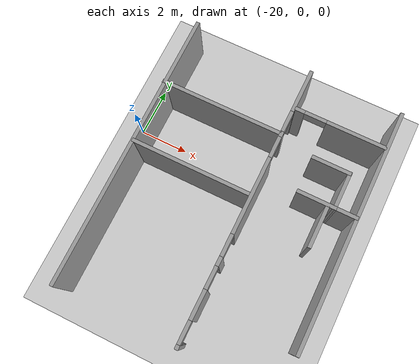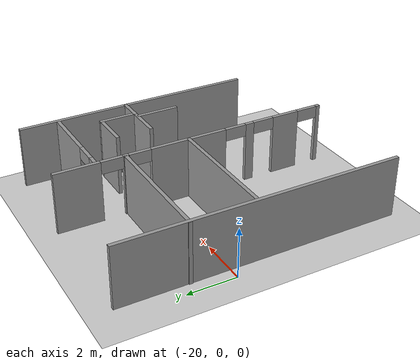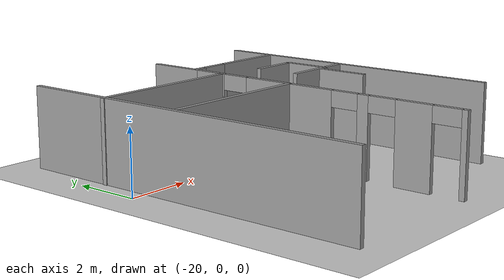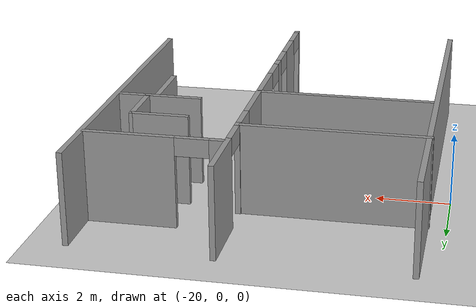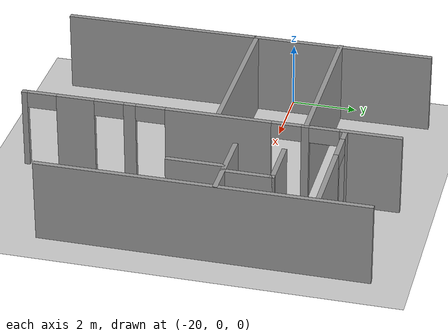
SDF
<sdf version="1.7">
 <world name="default">
  <model name="ground_plane">
   <static>1</static>
   <link name="link">
    <collision name="collision">
     <geometry><plane><normal>0 0 1</normal><size>100 100</size></plane></geometry>
     <surface><friction><ode><mu>100</mu><mu2>50</mu2></ode></friction></surface>
    </collision>
    <visual name="visual">
     <cast_shadows>0</cast_shadows>
     <geometry><plane><normal>0 0 1</normal><size>100 100</size></plane></geometry>
     <material>
      <script><uri>file://media/materials/scripts/gazebo.material</uri><name>Gazebo/Grey</name></script>
     </material>
    </visual>
   </link>
  </model>
  <model name="batimentH">
   <link name="Wall_1">
    <pose>-13.8701 1.00339 0 0 0 -1.56945</pose>
    <visual name="Wall_1_Visual">
     <pose>0 0 1.25 0 -0 0</pose>
     <geometry><box><size>11.5003 0.15 2.5</size></box></geometry>
     <material>
      <script><uri>file://media/materials/scripts/gazebo.material</uri><name>Gazebo/Grey</name></script>
      <ambient>1 1 1 1</ambient>
      <shader type="pixel"/>
     </material>
     <meta><layer>0</layer></meta>
    </visual>
    <collision name="Wall_1_Collision">
     <pose>0 0 1.25 0 -0 0</pose>
     <geometry><box><size>11.5003 0.15 2.5</size></box></geometry>
     <surface>
      <friction>
       <ode><mu>1</mu><mu2>1</mu2><fdir1>0 0 0</fdir1><slip1>0</slip1><slip2>0</slip2></ode>
       <torsional>
        <coefficient>1</coefficient>
        <patch_radius>0</patch_radius>
        <surface_radius>0</surface_radius>
        <use_patch_radius>1</use_patch_radius>
        <ode><slip>0</slip></ode>
       </torsional>
      </friction>
      <bounce><restitution_coefficient>0</restitution_coefficient><threshold>1e+06</threshold></bounce>
      <contact>
       <collide_without_contact>0</collide_without_contact>
       <collide_without_contact_bitmask>1</collide_without_contact_bitmask>
       <collide_bitmask>1</collide_bitmask>
       <ode>
        <soft_cfm>0</soft_cfm>
        <soft_erp>0.2</soft_erp>
        <kp>1e+13</kp>
        <kd>1</kd>
        <max_vel>0.01</max_vel>
        <min_depth>0</min_depth>
       </ode>
       <bullet>
        <split_impulse>1</split_impulse>
        <split_impulse_penetration_threshold>-0.01</split_impulse_penetration_threshold>
        <soft_cfm>0</soft_cfm>
        <soft_erp>0.2</soft_erp>
        <kp>1e+13</kp>
        <kd>1</kd>
       </bullet>
      </contact>
     </surface>
    </collision>
   </link>
   <link name="Wall_10">
    <pose>-11.4774 3.90885 0 0 -0 0</pose>
    <visual name="Wall_10_Visual">
     <pose>0 0 1.25 0 -0 0</pose>
     <geometry><box><size>5 0.15 2.5</size></box></geometry>
     <material>
      <script><uri>file://media/materials/scripts/gazebo.material</uri><name>Gazebo/Grey</name></script>
      <ambient>1 1 1 1</ambient>
      <shader type="pixel"/>
     </material>
     <meta><layer>0</layer></meta>
    </visual>
    <collision name="Wall_10_Collision">
     <pose>0 0 1.25 0 -0 0</pose>
     <geometry><box><size>5 0.15 2.5</size></box></geometry>
     <surface>
      <friction>
       <ode><mu>1</mu><mu2>1</mu2><fdir1>0 0 0</fdir1><slip1>0</slip1><slip2>0</slip2></ode>
       <torsional>
        <coefficient>1</coefficient>
        <patch_radius>0</patch_radius>
        <surface_radius>0</surface_radius>
        <use_patch_radius>1</use_patch_radius>
        <ode><slip>0</slip></ode>
       </torsional>
      </friction>
      <bounce><restitution_coefficient>0</restitution_coefficient><threshold>1e+06</threshold></bounce>
      <contact>
       <collide_without_contact>0</collide_without_contact>
       <collide_without_contact_bitmask>1</collide_without_contact_bitmask>
       <collide_bitmask>1</collide_bitmask>
       <ode>
        <soft_cfm>0</soft_cfm>
        <soft_erp>0.2</soft_erp>
        <kp>1e+13</kp>
        <kd>1</kd>
        <max_vel>0.01</max_vel>
        <min_depth>0</min_depth>
       </ode>
       <bullet>
        <split_impulse>1</split_impulse>
        <split_impulse_penetration_threshold>-0.01</split_impulse_penetration_threshold>
        <soft_cfm>0</soft_cfm>
        <soft_erp>0.2</soft_erp>
        <kp>1e+13</kp>
        <kd>1</kd>
       </bullet>
      </contact>
     </surface>
    </collision>
   </link>
   <link name="Wall_12">
    <pose>-7.02318 5.08516 0 0 -0 0</pose>
    <visual name="Wall_12_Visual_0">
     <pose>-1.67123 0 1.25 0 -0 0</pose>
     <geometry><box><size>0.40754 0.15 2.5</size></box></geometry>
     <material>
      <script><uri>file://media/materials/scripts/gazebo.material</uri><name>Gazebo/Grey</name></script>
      <ambient>1 1 1 1</ambient>
      <shader type="pixel"/>
     </material>
     <meta><layer>0</layer></meta>
    </visual>
    <visual name="Wall_12_Visual_1">
     <pose>0.65377 0 1.25 0 -0 0</pose>
     <geometry><box><size>2.44246 0.15 2.5</size></box></geometry>
     <material>
      <script><uri>file://media/materials/scripts/gazebo.material</uri><name>Gazebo/Grey</name></script>
      <ambient>1 1 1 1</ambient>
      <shader type="pixel"/>
     </material>
     <meta><layer>0</layer></meta>
    </visual>
    <visual name="Wall_12_Visual_2">
     <pose>-1.01746 0 2.25 0 -0 0</pose>
     <geometry><box><size>0.9 0.15 0.5</size></box></geometry>
     <material>
      <script><uri>file://media/materials/scripts/gazebo.material</uri><name>Gazebo/Grey</name></script>
      <ambient>1 1 1 1</ambient>
      <shader type="pixel"/>
     </material>
     <meta><layer>0</layer></meta>
    </visual>
    <collision name="Wall_12_Collision_0">
     <pose>-1.67123 0 1.25 0 -0 0</pose>
     <geometry><box><size>0.40754 0.15 2.5</size></box></geometry>
     <surface>
      <friction>
       <ode><mu>1</mu><mu2>1</mu2><fdir1>0 0 0</fdir1><slip1>0</slip1><slip2>0</slip2></ode>
       <torsional>
        <coefficient>1</coefficient>
        <patch_radius>0</patch_radius>
        <surface_radius>0</surface_radius>
        <use_patch_radius>1</use_patch_radius>
        <ode><slip>0</slip></ode>
       </torsional>
      </friction>
      <bounce><restitution_coefficient>0</restitution_coefficient><threshold>1e+06</threshold></bounce>
      <contact>
       <collide_without_contact>0</collide_without_contact>
       <collide_without_contact_bitmask>1</collide_without_contact_bitmask>
       <collide_bitmask>1</collide_bitmask>
       <ode>
        <soft_cfm>0</soft_cfm>
        <soft_erp>0.2</soft_erp>
        <kp>1e+13</kp>
        <kd>1</kd>
        <max_vel>0.01</max_vel>
        <min_depth>0</min_depth>
       </ode>
       <bullet>
        <split_impulse>1</split_impulse>
        <split_impulse_penetration_threshold>-0.01</split_impulse_penetration_threshold>
        <soft_cfm>0</soft_cfm>
        <soft_erp>0.2</soft_erp>
        <kp>1e+13</kp>
        <kd>1</kd>
       </bullet>
      </contact>
     </surface>
    </collision>
    <collision name="Wall_12_Collision_1">
     <pose>0.65377 0 1.25 0 -0 0</pose>
     <geometry><box><size>2.44246 0.15 2.5</size></box></geometry>
     <surface>
      <friction>
       <ode><mu>1</mu><mu2>1</mu2><fdir1>0 0 0</fdir1><slip1>0</slip1><slip2>0</slip2></ode>
       <torsional>
        <coefficient>1</coefficient>
        <patch_radius>0</patch_radius>
        <surface_radius>0</surface_radius>
        <use_patch_radius>1</use_patch_radius>
        <ode><slip>0</slip></ode>
       </torsional>
      </friction>
      <bounce><restitution_coefficient>0</restitution_coefficient><threshold>1e+06</threshold></bounce>
      <contact>
       <collide_without_contact>0</collide_without_contact>
       <collide_without_contact_bitmask>1</collide_without_contact_bitmask>
       <collide_bitmask>1</collide_bitmask>
       <ode>
        <soft_cfm>0</soft_cfm>
        <soft_erp>0.2</soft_erp>
        <kp>1e+13</kp>
        <kd>1</kd>
        <max_vel>0.01</max_vel>
        <min_depth>0</min_depth>
       </ode>
       <bullet>
        <split_impulse>1</split_impulse>
        <split_impulse_penetration_threshold>-0.01</split_impulse_penetration_threshold>
        <soft_cfm>0</soft_cfm>
        <soft_erp>0.2</soft_erp>
        <kp>1e+13</kp>
        <kd>1</kd>
       </bullet>
      </contact>
     </surface>
    </collision>
    <collision name="Wall_12_Collision_2">
     <pose>-1.01746 0 2.25 0 -0 0</pose>
     <geometry><box><size>0.9 0.15 0.5</size></box></geometry>
     <surface>
      <friction>
       <ode><mu>1</mu><mu2>1</mu2><fdir1>0 0 0</fdir1><slip1>0</slip1><slip2>0</slip2></ode>
       <torsional>
        <coefficient>1</coefficient>
        <patch_radius>0</patch_radius>
        <surface_radius>0</surface_radius>
        <use_patch_radius>1</use_patch_radius>
        <ode><slip>0</slip></ode>
       </torsional>
      </friction>
      <bounce><restitution_coefficient>0</restitution_coefficient><threshold>1e+06</threshold></bounce>
      <contact>
       <collide_without_contact>0</collide_without_contact>
       <collide_without_contact_bitmask>1</collide_without_contact_bitmask>
       <collide_bitmask>1</collide_bitmask>
       <ode>
        <soft_cfm>0</soft_cfm>
        <soft_erp>0.2</soft_erp>
        <kp>1e+13</kp>
        <kd>1</kd>
        <max_vel>0.01</max_vel>
        <min_depth>0</min_depth>
       </ode>
       <bullet>
        <split_impulse>1</split_impulse>
        <split_impulse_penetration_threshold>-0.01</split_impulse_penetration_threshold>
        <soft_cfm>0</soft_cfm>
        <soft_erp>0.2</soft_erp>
        <kp>1e+13</kp>
        <kd>1</kd>
       </bullet>
      </contact>
     </surface>
    </collision>
   </link>
   <link name="Wall_16">
    <pose>-5.12746 1.74768 0 0 -0 1.5708</pose>
    <visual name="Wall_16_Visual">
     <pose>0 0 1.25 0 -0 0</pose>
     <geometry><box><size>9.82652 0.15 2.5</size></box></geometry>
     <material>
      <script><uri>file://media/materials/scripts/gazebo.material</uri><name>Gazebo/Grey</name></script>
      <ambient>1 1 1 1</ambient>
      <shader type="pixel"/>
     </material>
     <meta><layer>0</layer></meta>
    </visual>
    <collision name="Wall_16_Collision">
     <pose>0 0 1.25 0 -0 0</pose>
     <geometry><box><size>9.82652 0.15 2.5</size></box></geometry>
     <surface>
      <friction>
       <ode><mu>1</mu><mu2>1</mu2><fdir1>0 0 0</fdir1><slip1>0</slip1><slip2>0</slip2></ode>
       <torsional>
        <coefficient>1</coefficient>
        <patch_radius>0</patch_radius>
        <surface_radius>0</surface_radius>
        <use_patch_radius>1</use_patch_radius>
        <ode><slip>0</slip></ode>
       </torsional>
      </friction>
      <bounce><restitution_coefficient>0</restitution_coefficient><threshold>1e+06</threshold></bounce>
      <contact>
       <collide_without_contact>0</collide_without_contact>
       <collide_without_contact_bitmask>1</collide_without_contact_bitmask>
       <collide_bitmask>1</collide_bitmask>
       <ode>
        <soft_cfm>0</soft_cfm>
        <soft_erp>0.2</soft_erp>
        <kp>1e+13</kp>
        <kd>1</kd>
        <max_vel>0.01</max_vel>
        <min_depth>0</min_depth>
       </ode>
       <bullet>
        <split_impulse>1</split_impulse>
        <split_impulse_penetration_threshold>-0.01</split_impulse_penetration_threshold>
        <soft_cfm>0</soft_cfm>
        <soft_erp>0.2</soft_erp>
        <kp>1e+13</kp>
        <kd>1</kd>
       </bullet>
      </contact>
     </surface>
    </collision>
   </link>
   <link name="Wall_20">
    <pose>-6.74218 3.58667 0 0 0 -0.000439</pose>
    <visual name="Wall_20_Visual">
     <pose>0 0 1.25 0 -0 0</pose>
     <geometry><box><size>1.62056 0.15 2.5</size></box></geometry>
     <material>
      <script><uri>file://media/materials/scripts/gazebo.material</uri><name>Gazebo/Grey</name></script>
      <ambient>1 1 1 1</ambient>
      <shader type="pixel"/>
     </material>
     <meta><layer>0</layer></meta>
    </visual>
    <collision name="Wall_20_Collision">
     <pose>0 0 1.25 0 -0 0</pose>
     <geometry><box><size>1.62056 0.15 2.5</size></box></geometry>
     <surface>
      <friction>
       <ode><mu>1</mu><mu2>1</mu2><fdir1>0 0 0</fdir1><slip1>0</slip1><slip2>0</slip2></ode>
       <torsional>
        <coefficient>1</coefficient>
        <patch_radius>0</patch_radius>
        <surface_radius>0</surface_radius>
        <use_patch_radius>1</use_patch_radius>
        <ode><slip>0</slip></ode>
       </torsional>
      </friction>
      <bounce><restitution_coefficient>0</restitution_coefficient><threshold>1e+06</threshold></bounce>
      <contact>
       <collide_without_contact>0</collide_without_contact>
       <collide_without_contact_bitmask>1</collide_without_contact_bitmask>
       <collide_bitmask>1</collide_bitmask>
       <ode>
        <soft_cfm>0</soft_cfm>
        <soft_erp>0.2</soft_erp>
        <kp>1e+13</kp>
        <kd>1</kd>
        <max_vel>0.01</max_vel>
        <min_depth>0</min_depth>
       </ode>
       <bullet>
        <split_impulse>1</split_impulse>
        <split_impulse_penetration_threshold>-0.01</split_impulse_penetration_threshold>
        <soft_cfm>0</soft_cfm>
        <soft_erp>0.2</soft_erp>
        <kp>1e+13</kp>
        <kd>1</kd>
       </bullet>
      </contact>
     </surface>
    </collision>
   </link>
   <link name="Wall_21">
    <pose>-6.0069 2.86964 0 0 0 -1.5708</pose>
    <visual name="Wall_21_Visual">
     <pose>0 0 1.25 0 -0 0</pose>
     <geometry><box><size>1.58344 0.15 2.5</size></box></geometry>
     <material>
      <script><uri>file://media/materials/scripts/gazebo.material</uri><name>Gazebo/Grey</name></script>
      <ambient>1 1 1 1</ambient>
      <shader type="pixel"/>
     </material>
     <meta><layer>0</layer></meta>
    </visual>
    <collision name="Wall_21_Collision">
     <pose>0 0 1.25 0 -0 0</pose>
     <geometry><box><size>1.58344 0.15 2.5</size></box></geometry>
     <surface>
      <friction>
       <ode><mu>1</mu><mu2>1</mu2><fdir1>0 0 0</fdir1><slip1>0</slip1><slip2>0</slip2></ode>
       <torsional>
        <coefficient>1</coefficient>
        <patch_radius>0</patch_radius>
        <surface_radius>0</surface_radius>
        <use_patch_radius>1</use_patch_radius>
        <ode><slip>0</slip></ode>
       </torsional>
      </friction>
      <bounce><restitution_coefficient>0</restitution_coefficient><threshold>1e+06</threshold></bounce>
      <contact>
       <collide_without_contact>0</collide_without_contact>
       <collide_without_contact_bitmask>1</collide_without_contact_bitmask>
       <collide_bitmask>1</collide_bitmask>
       <ode>
        <soft_cfm>0</soft_cfm>
        <soft_erp>0.2</soft_erp>
        <kp>1e+13</kp>
        <kd>1</kd>
        <max_vel>0.01</max_vel>
        <min_depth>0</min_depth>
       </ode>
       <bullet>
        <split_impulse>1</split_impulse>
        <split_impulse_penetration_threshold>-0.01</split_impulse_penetration_threshold>
        <soft_cfm>0</soft_cfm>
        <soft_erp>0.2</soft_erp>
        <kp>1e+13</kp>
        <kd>1</kd>
       </bullet>
      </contact>
     </surface>
    </collision>
   </link>
   <link name="Wall_22">
    <pose>-6.72679 2.15312 0 0 -0 3.14132</pose>
    <visual name="Wall_22_Visual">
     <pose>0 0 1.25 0 -0 0</pose>
     <geometry><box><size>1.58979 0.15 2.5</size></box></geometry>
     <material>
      <script><uri>file://media/materials/scripts/gazebo.material</uri><name>Gazebo/Grey</name></script>
      <ambient>1 1 1 1</ambient>
      <shader type="pixel"/>
     </material>
     <meta><layer>0</layer></meta>
    </visual>
    <collision name="Wall_22_Collision">
     <pose>0 0 1.25 0 -0 0</pose>
     <geometry><box><size>1.58979 0.15 2.5</size></box></geometry>
     <surface>
      <friction>
       <ode><mu>1</mu><mu2>1</mu2><fdir1>0 0 0</fdir1><slip1>0</slip1><slip2>0</slip2></ode>
       <torsional>
        <coefficient>1</coefficient>
        <patch_radius>0</patch_radius>
        <surface_radius>0</surface_radius>
        <use_patch_radius>1</use_patch_radius>
        <ode><slip>0</slip></ode>
       </torsional>
      </friction>
      <bounce><restitution_coefficient>0</restitution_coefficient><threshold>1e+06</threshold></bounce>
      <contact>
       <collide_without_contact>0</collide_without_contact>
       <collide_without_contact_bitmask>1</collide_without_contact_bitmask>
       <collide_bitmask>1</collide_bitmask>
       <ode>
        <soft_cfm>0</soft_cfm>
        <soft_erp>0.2</soft_erp>
        <kp>1e+13</kp>
        <kd>1</kd>
        <max_vel>0.01</max_vel>
        <min_depth>0</min_depth>
       </ode>
       <bullet>
        <split_impulse>1</split_impulse>
        <split_impulse_penetration_threshold>-0.01</split_impulse_penetration_threshold>
        <soft_cfm>0</soft_cfm>
        <soft_erp>0.2</soft_erp>
        <kp>1e+13</kp>
        <kd>1</kd>
       </bullet>
      </contact>
     </surface>
    </collision>
   </link>
   <link name="Wall_31">
    <pose>-5.5819 2.15293 0 0 -0 0</pose>
    <visual name="Wall_31_Visual">
     <pose>0 0 1.25 0 -0 0</pose>
     <geometry><box><size>1 0.15 2.5</size></box></geometry>
     <material>
      <script><uri>file://media/materials/scripts/gazebo.material</uri><name>Gazebo/Grey</name></script>
      <ambient>1 1 1 1</ambient>
      <shader type="pixel"/>
     </material>
     <meta><layer>0</layer></meta>
    </visual>
    <collision name="Wall_31_Collision">
     <pose>0 0 1.25 0 -0 0</pose>
     <geometry><box><size>1 0.15 2.5</size></box></geometry>
     <surface>
      <friction>
       <ode><mu>1</mu><mu2>1</mu2><fdir1>0 0 0</fdir1><slip1>0</slip1><slip2>0</slip2></ode>
       <torsional>
        <coefficient>1</coefficient>
        <patch_radius>0</patch_radius>
        <surface_radius>0</surface_radius>
        <use_patch_radius>1</use_patch_radius>
        <ode><slip>0</slip></ode>
       </torsional>
      </friction>
      <bounce><restitution_coefficient>0</restitution_coefficient><threshold>1e+06</threshold></bounce>
      <contact>
       <collide_without_contact>0</collide_without_contact>
       <collide_without_contact_bitmask>1</collide_without_contact_bitmask>
       <collide_bitmask>1</collide_bitmask>
       <ode>
        <soft_cfm>0</soft_cfm>
        <soft_erp>0.2</soft_erp>
        <kp>1e+13</kp>
        <kd>1</kd>
        <max_vel>0.01</max_vel>
        <min_depth>0</min_depth>
       </ode>
       <bullet>
        <split_impulse>1</split_impulse>
        <split_impulse_penetration_threshold>-0.01</split_impulse_penetration_threshold>
        <soft_cfm>0</soft_cfm>
        <soft_erp>0.2</soft_erp>
        <kp>1e+13</kp>
        <kd>1</kd>
       </bullet>
      </contact>
     </surface>
    </collision>
   </link>
   <link name="Wall_33">
    <pose>-6.26514 1.28314 0 0 -0 1.5708</pose>
    <visual name="Wall_33_Visual">
     <pose>0 0 1.25 0 -0 0</pose>
     <geometry><box><size>1.75 0.15 2.5</size></box></geometry>
     <material>
      <script><uri>file://media/materials/scripts/gazebo.material</uri><name>Gazebo/Grey</name></script>
      <ambient>1 1 1 1</ambient>
      <shader type="pixel"/>
     </material>
     <meta><layer>0</layer></meta>
    </visual>
    <collision name="Wall_33_Collision">
     <pose>0 0 1.25 0 -0 0</pose>
     <geometry><box><size>1.75 0.15 2.5</size></box></geometry>
     <surface>
      <friction>
       <ode><mu>1</mu><mu2>1</mu2><fdir1>0 0 0</fdir1><slip1>0</slip1><slip2>0</slip2></ode>
       <torsional>
        <coefficient>1</coefficient>
        <patch_radius>0</patch_radius>
        <surface_radius>0</surface_radius>
        <use_patch_radius>1</use_patch_radius>
        <ode><slip>0</slip></ode>
       </torsional>
      </friction>
      <bounce><restitution_coefficient>0</restitution_coefficient><threshold>1e+06</threshold></bounce>
      <contact>
       <collide_without_contact>0</collide_without_contact>
       <collide_without_contact_bitmask>1</collide_without_contact_bitmask>
       <collide_bitmask>1</collide_bitmask>
       <ode>
        <soft_cfm>0</soft_cfm>
        <soft_erp>0.2</soft_erp>
        <kp>1e+13</kp>
        <kd>1</kd>
        <max_vel>0.01</max_vel>
        <min_depth>0</min_depth>
       </ode>
       <bullet>
        <split_impulse>1</split_impulse>
        <split_impulse_penetration_threshold>-0.01</split_impulse_penetration_threshold>
        <soft_cfm>0</soft_cfm>
        <soft_erp>0.2</soft_erp>
        <kp>1e+13</kp>
        <kd>1</kd>
       </bullet>
      </contact>
     </surface>
    </collision>
   </link>
   <link name="Wall_6">
    <pose>-8.94417 1.01293 0 0 0 -1.5708</pose>
    <visual name="Wall_6_Visual_0">
     <pose>-4.82439 0 1.25 0 -0 0</pose>
     <geometry><box><size>1.85121 0.15 2.5</size></box></geometry>
     <material>
      <script><uri>file://media/materials/scripts/gazebo.material</uri><name>Gazebo/Grey</name></script>
      <ambient>1 1 1 1</ambient>
      <shader type="pixel"/>
     </material>
     <meta><layer>0</layer></meta>
    </visual>
    <visual name="Wall_6_Visual_1">
     <pose>-2.88416 0 1.25 0 -0 0</pose>
     <geometry><box><size>0.22926 0.15 2.5</size></box></geometry>
     <material>
      <script><uri>file://media/materials/scripts/gazebo.material</uri><name>Gazebo/Grey</name></script>
      <ambient>1 1 1 1</ambient>
      <shader type="pixel"/>
     </material>
     <meta><layer>0</layer></meta>
    </visual>
    <visual name="Wall_6_Visual_2">
     <pose>-0.267549 0 1.25 0 -0 0</pose>
     <geometry><box><size>3.20396 0.15 2.5</size></box></geometry>
     <material>
      <script><uri>file://media/materials/scripts/gazebo.material</uri><name>Gazebo/Grey</name></script>
      <ambient>1 1 1 1</ambient>
      <shader type="pixel"/>
     </material>
     <meta><layer>0</layer></meta>
    </visual>
    <visual name="Wall_6_Visual_3">
     <pose>2.41832 0 1.25 0 -0 0</pose>
     <geometry><box><size>0.367777 0.15 2.5</size></box></geometry>
     <material>
      <script><uri>file://media/materials/scripts/gazebo.material</uri><name>Gazebo/Grey</name></script>
      <ambient>1 1 1 1</ambient>
      <shader type="pixel"/>
     </material>
     <meta><layer>0</layer></meta>
    </visual>
    <visual name="Wall_6_Visual_4">
     <pose>4.08828 0 1.25 0 -0 0</pose>
     <geometry><box><size>1.17214 0.15 2.5</size></box></geometry>
     <material>
      <script><uri>file://media/materials/scripts/gazebo.material</uri><name>Gazebo/Grey</name></script>
      <ambient>1 1 1 1</ambient>
      <shader type="pixel"/>
     </material>
     <meta><layer>0</layer></meta>
    </visual>
    <visual name="Wall_6_Visual_5">
     <pose>5.66217 0 1.25 0 -0 0</pose>
     <geometry><box><size>0.175651 0.15 2.5</size></box></geometry>
     <material>
      <script><uri>file://media/materials/scripts/gazebo.material</uri><name>Gazebo/Grey</name></script>
      <ambient>1 1 1 1</ambient>
      <shader type="pixel"/>
     </material>
     <meta><layer>0</layer></meta>
    </visual>
    <visual name="Wall_6_Visual_6">
     <pose>-3.44879 0 2.25 0 -0 0</pose>
     <geometry><box><size>0.9 0.15 0.5</size></box></geometry>
     <material>
      <script><uri>file://media/materials/scripts/gazebo.material</uri><name>Gazebo/Grey</name></script>
      <ambient>1 1 1 1</ambient>
      <shader type="pixel"/>
     </material>
     <meta><layer>0</layer></meta>
    </visual>
    <visual name="Wall_6_Visual_7">
     <pose>-2.31953 0 2.25 0 -0 0</pose>
     <geometry><box><size>0.9 0.15 0.5</size></box></geometry>
     <material>
      <script><uri>file://media/materials/scripts/gazebo.material</uri><name>Gazebo/Grey</name></script>
      <ambient>1 1 1 1</ambient>
      <shader type="pixel"/>
     </material>
     <meta><layer>0</layer></meta>
    </visual>
    <visual name="Wall_6_Visual_8">
     <pose>1.78443 0 2.25 0 -0 0</pose>
     <geometry><box><size>0.9 0.15 0.5</size></box></geometry>
     <material>
      <script><uri>file://media/materials/scripts/gazebo.material</uri><name>Gazebo/Grey</name></script>
      <ambient>1 1 1 1</ambient>
      <shader type="pixel"/>
     </material>
     <meta><layer>0</layer></meta>
    </visual>
    <visual name="Wall_6_Visual_9">
     <pose>3.05221 0 2.25 0 -0 0</pose>
     <geometry><box><size>0.9 0.15 0.5</size></box></geometry>
     <material>
      <script><uri>file://media/materials/scripts/gazebo.material</uri><name>Gazebo/Grey</name></script>
      <ambient>1 1 1 1</ambient>
      <shader type="pixel"/>
     </material>
     <meta><layer>0</layer></meta>
    </visual>
    <visual name="Wall_6_Visual_10">
     <pose>5.12435 0 2.25 0 -0 0</pose>
     <geometry><box><size>0.9 0.15 0.5</size></box></geometry>
     <material>
      <script><uri>file://media/materials/scripts/gazebo.material</uri><name>Gazebo/Grey</name></script>
      <ambient>1 1 1 1</ambient>
      <shader type="pixel"/>
     </material>
     <meta><layer>0</layer></meta>
    </visual>
    <collision name="Wall_6_Collision_0">
     <pose>-4.82439 0 1.25 0 -0 0</pose>
     <geometry><box><size>1.85121 0.15 2.5</size></box></geometry>
     <surface>
      <friction>
       <ode><mu>1</mu><mu2>1</mu2><fdir1>0 0 0</fdir1><slip1>0</slip1><slip2>0</slip2></ode>
       <torsional>
        <coefficient>1</coefficient>
        <patch_radius>0</patch_radius>
        <surface_radius>0</surface_radius>
        <use_patch_radius>1</use_patch_radius>
        <ode><slip>0</slip></ode>
       </torsional>
      </friction>
      <bounce><restitution_coefficient>0</restitution_coefficient><threshold>1e+06</threshold></bounce>
      <contact>
       <collide_without_contact>0</collide_without_contact>
       <collide_without_contact_bitmask>1</collide_without_contact_bitmask>
       <collide_bitmask>1</collide_bitmask>
       <ode>
        <soft_cfm>0</soft_cfm>
        <soft_erp>0.2</soft_erp>
        <kp>1e+13</kp>
        <kd>1</kd>
        <max_vel>0.01</max_vel>
        <min_depth>0</min_depth>
       </ode>
       <bullet>
        <split_impulse>1</split_impulse>
        <split_impulse_penetration_threshold>-0.01</split_impulse_penetration_threshold>
        <soft_cfm>0</soft_cfm>
        <soft_erp>0.2</soft_erp>
        <kp>1e+13</kp>
        <kd>1</kd>
       </bullet>
      </contact>
     </surface>
    </collision>
    <collision name="Wall_6_Collision_2">
     <pose>-0.267549 0 1.25 0 -0 0</pose>
     <geometry><box><size>3.20396 0.15 2.5</size></box></geometry>
     <surface>
      <friction>
       <ode><mu>1</mu><mu2>1</mu2><fdir1>0 0 0</fdir1><slip1>0</slip1><slip2>0</slip2></ode>
       <torsional>
        <coefficient>1</coefficient>
        <patch_radius>0</patch_radius>
        <surface_radius>0</surface_radius>
        <use_patch_radius>1</use_patch_radius>
        <ode><slip>0</slip></ode>
       </torsional>
      </friction>
      <bounce><restitution_coefficient>0</restitution_coefficient><threshold>1e+06</threshold></bounce>
      <contact>
       <collide_without_contact>0</collide_without_contact>
       <collide_without_contact_bitmask>1</collide_without_contact_bitmask>
       <collide_bitmask>1</collide_bitmask>
       <ode>
        <soft_cfm>0</soft_cfm>
        <soft_erp>0.2</soft_erp>
        <kp>1e+13</kp>
        <kd>1</kd>
        <max_vel>0.01</max_vel>
        <min_depth>0</min_depth>
       </ode>
       <bullet>
        <split_impulse>1</split_impulse>
        <split_impulse_penetration_threshold>-0.01</split_impulse_penetration_threshold>
        <soft_cfm>0</soft_cfm>
        <soft_erp>0.2</soft_erp>
        <kp>1e+13</kp>
        <kd>1</kd>
       </bullet>
      </contact>
     </surface>
    </collision>
    <collision name="Wall_6_Collision_1">
     <pose>-2.88416 0 1.25 0 -0 0</pose>
     <geometry><box><size>0.22926 0.15 2.5</size></box></geometry>
     <surface>
      <friction>
       <ode><mu>1</mu><mu2>1</mu2><fdir1>0 0 0</fdir1><slip1>0</slip1><slip2>0</slip2></ode>
       <torsional>
        <coefficient>1</coefficient>
        <patch_radius>0</patch_radius>
        <surface_radius>0</surface_radius>
        <use_patch_radius>1</use_patch_radius>
        <ode><slip>0</slip></ode>
       </torsional>
      </friction>
      <bounce><restitution_coefficient>0</restitution_coefficient><threshold>1e+06</threshold></bounce>
      <contact>
       <collide_without_contact>0</collide_without_contact>
       <collide_without_contact_bitmask>1</collide_without_contact_bitmask>
       <collide_bitmask>1</collide_bitmask>
       <ode>
        <soft_cfm>0</soft_cfm>
        <soft_erp>0.2</soft_erp>
        <kp>1e+13</kp>
        <kd>1</kd>
        <max_vel>0.01</max_vel>
        <min_depth>0</min_depth>
       </ode>
       <bullet>
        <split_impulse>1</split_impulse>
        <split_impulse_penetration_threshold>-0.01</split_impulse_penetration_threshold>
        <soft_cfm>0</soft_cfm>
        <soft_erp>0.2</soft_erp>
        <kp>1e+13</kp>
        <kd>1</kd>
       </bullet>
      </contact>
     </surface>
    </collision>
    <collision name="Wall_6_Collision_3">
     <pose>2.41832 0 1.25 0 -0 0</pose>
     <geometry><box><size>0.367777 0.15 2.5</size></box></geometry>
     <surface>
      <friction>
       <ode><mu>1</mu><mu2>1</mu2><fdir1>0 0 0</fdir1><slip1>0</slip1><slip2>0</slip2></ode>
       <torsional>
        <coefficient>1</coefficient>
        <patch_radius>0</patch_radius>
        <surface_radius>0</surface_radius>
        <use_patch_radius>1</use_patch_radius>
        <ode><slip>0</slip></ode>
       </torsional>
      </friction>
      <bounce><restitution_coefficient>0</restitution_coefficient><threshold>1e+06</threshold></bounce>
      <contact>
       <collide_without_contact>0</collide_without_contact>
       <collide_without_contact_bitmask>1</collide_without_contact_bitmask>
       <collide_bitmask>1</collide_bitmask>
       <ode>
        <soft_cfm>0</soft_cfm>
        <soft_erp>0.2</soft_erp>
        <kp>1e+13</kp>
        <kd>1</kd>
        <max_vel>0.01</max_vel>
        <min_depth>0</min_depth>
       </ode>
       <bullet>
        <split_impulse>1</split_impulse>
        <split_impulse_penetration_threshold>-0.01</split_impulse_penetration_threshold>
        <soft_cfm>0</soft_cfm>
        <soft_erp>0.2</soft_erp>
        <kp>1e+13</kp>
        <kd>1</kd>
       </bullet>
      </contact>
     </surface>
    </collision>
    <collision name="Wall_6_Collision_4">
     <pose>4.08828 0 1.25 0 -0 0</pose>
     <geometry><box><size>1.17214 0.15 2.5</size></box></geometry>
     <surface>
      <friction>
       <ode><mu>1</mu><mu2>1</mu2><fdir1>0 0 0</fdir1><slip1>0</slip1><slip2>0</slip2></ode>
       <torsional>
        <coefficient>1</coefficient>
        <patch_radius>0</patch_radius>
        <surface_radius>0</surface_radius>
        <use_patch_radius>1</use_patch_radius>
        <ode><slip>0</slip></ode>
       </torsional>
      </friction>
      <bounce><restitution_coefficient>0</restitution_coefficient><threshold>1e+06</threshold></bounce>
      <contact>
       <collide_without_contact>0</collide_without_contact>
       <collide_without_contact_bitmask>1</collide_without_contact_bitmask>
       <collide_bitmask>1</collide_bitmask>
       <ode>
        <soft_cfm>0</soft_cfm>
        <soft_erp>0.2</soft_erp>
        <kp>1e+13</kp>
        <kd>1</kd>
        <max_vel>0.01</max_vel>
        <min_depth>0</min_depth>
       </ode>
       <bullet>
        <split_impulse>1</split_impulse>
        <split_impulse_penetration_threshold>-0.01</split_impulse_penetration_threshold>
        <soft_cfm>0</soft_cfm>
        <soft_erp>0.2</soft_erp>
        <kp>1e+13</kp>
        <kd>1</kd>
       </bullet>
      </contact>
     </surface>
    </collision>
    <collision name="Wall_6_Collision_5">
     <pose>5.66217 0 1.25 0 -0 0</pose>
     <geometry><box><size>0.175651 0.15 2.5</size></box></geometry>
     <surface>
      <friction>
       <ode><mu>1</mu><mu2>1</mu2><fdir1>0 0 0</fdir1><slip1>0</slip1><slip2>0</slip2></ode>
       <torsional>
        <coefficient>1</coefficient>
        <patch_radius>0</patch_radius>
        <surface_radius>0</surface_radius>
        <use_patch_radius>1</use_patch_radius>
        <ode><slip>0</slip></ode>
       </torsional>
      </friction>
      <bounce><restitution_coefficient>0</restitution_coefficient><threshold>1e+06</threshold></bounce>
      <contact>
       <collide_without_contact>0</collide_without_contact>
       <collide_without_contact_bitmask>1</collide_without_contact_bitmask>
       <collide_bitmask>1</collide_bitmask>
       <ode>
        <soft_cfm>0</soft_cfm>
        <soft_erp>0.2</soft_erp>
        <kp>1e+13</kp>
        <kd>1</kd>
        <max_vel>0.01</max_vel>
        <min_depth>0</min_depth>
       </ode>
       <bullet>
        <split_impulse>1</split_impulse>
        <split_impulse_penetration_threshold>-0.01</split_impulse_penetration_threshold>
        <soft_cfm>0</soft_cfm>
        <soft_erp>0.2</soft_erp>
        <kp>1e+13</kp>
        <kd>1</kd>
       </bullet>
      </contact>
     </surface>
    </collision>
    <collision name="Wall_6_Collision_6">
     <pose>-3.44879 0 2.25 0 -0 0</pose>
     <geometry><box><size>0.9 0.15 0.5</size></box></geometry>
     <surface>
      <friction>
       <ode><mu>1</mu><mu2>1</mu2><fdir1>0 0 0</fdir1><slip1>0</slip1><slip2>0</slip2></ode>
       <torsional>
        <coefficient>1</coefficient>
        <patch_radius>0</patch_radius>
        <surface_radius>0</surface_radius>
        <use_patch_radius>1</use_patch_radius>
        <ode><slip>0</slip></ode>
       </torsional>
      </friction>
      <bounce><restitution_coefficient>0</restitution_coefficient><threshold>1e+06</threshold></bounce>
      <contact>
       <collide_without_contact>0</collide_without_contact>
       <collide_without_contact_bitmask>1</collide_without_contact_bitmask>
       <collide_bitmask>1</collide_bitmask>
       <ode>
        <soft_cfm>0</soft_cfm>
        <soft_erp>0.2</soft_erp>
        <kp>1e+13</kp>
        <kd>1</kd>
        <max_vel>0.01</max_vel>
        <min_depth>0</min_depth>
       </ode>
       <bullet>
        <split_impulse>1</split_impulse>
        <split_impulse_penetration_threshold>-0.01</split_impulse_penetration_threshold>
        <soft_cfm>0</soft_cfm>
        <soft_erp>0.2</soft_erp>
        <kp>1e+13</kp>
        <kd>1</kd>
       </bullet>
      </contact>
     </surface>
    </collision>
    <collision name="Wall_6_Collision_7">
     <pose>-2.31953 0 2.25 0 -0 0</pose>
     <geometry><box><size>0.9 0.15 0.5</size></box></geometry>
     <surface>
      <friction>
       <ode><mu>1</mu><mu2>1</mu2><fdir1>0 0 0</fdir1><slip1>0</slip1><slip2>0</slip2></ode>
       <torsional>
        <coefficient>1</coefficient>
        <patch_radius>0</patch_radius>
        <surface_radius>0</surface_radius>
        <use_patch_radius>1</use_patch_radius>
        <ode><slip>0</slip></ode>
       </torsional>
      </friction>
      <bounce><restitution_coefficient>0</restitution_coefficient><threshold>1e+06</threshold></bounce>
      <contact>
       <collide_without_contact>0</collide_without_contact>
       <collide_without_contact_bitmask>1</collide_without_contact_bitmask>
       <collide_bitmask>1</collide_bitmask>
       <ode>
        <soft_cfm>0</soft_cfm>
        <soft_erp>0.2</soft_erp>
        <kp>1e+13</kp>
        <kd>1</kd>
        <max_vel>0.01</max_vel>
        <min_depth>0</min_depth>
       </ode>
       <bullet>
        <split_impulse>1</split_impulse>
        <split_impulse_penetration_threshold>-0.01</split_impulse_penetration_threshold>
        <soft_cfm>0</soft_cfm>
        <soft_erp>0.2</soft_erp>
        <kp>1e+13</kp>
        <kd>1</kd>
       </bullet>
      </contact>
     </surface>
    </collision>
    <collision name="Wall_6_Collision_8">
     <pose>1.78443 0 2.25 0 -0 0</pose>
     <geometry><box><size>0.9 0.15 0.5</size></box></geometry>
     <surface>
      <friction>
       <ode><mu>1</mu><mu2>1</mu2><fdir1>0 0 0</fdir1><slip1>0</slip1><slip2>0</slip2></ode>
       <torsional>
        <coefficient>1</coefficient>
        <patch_radius>0</patch_radius>
        <surface_radius>0</surface_radius>
        <use_patch_radius>1</use_patch_radius>
        <ode><slip>0</slip></ode>
       </torsional>
      </friction>
      <bounce><restitution_coefficient>0</restitution_coefficient><threshold>1e+06</threshold></bounce>
      <contact>
       <collide_without_contact>0</collide_without_contact>
       <collide_without_contact_bitmask>1</collide_without_contact_bitmask>
       <collide_bitmask>1</collide_bitmask>
       <ode>
        <soft_cfm>0</soft_cfm>
        <soft_erp>0.2</soft_erp>
        <kp>1e+13</kp>
        <kd>1</kd>
        <max_vel>0.01</max_vel>
        <min_depth>0</min_depth>
       </ode>
       <bullet>
        <split_impulse>1</split_impulse>
        <split_impulse_penetration_threshold>-0.01</split_impulse_penetration_threshold>
        <soft_cfm>0</soft_cfm>
        <soft_erp>0.2</soft_erp>
        <kp>1e+13</kp>
        <kd>1</kd>
       </bullet>
      </contact>
     </surface>
    </collision>
    <collision name="Wall_6_Collision_9">
     <pose>3.05221 0 2.25 0 -0 0</pose>
     <geometry><box><size>0.9 0.15 0.5</size></box></geometry>
     <surface>
      <friction>
       <ode><mu>1</mu><mu2>1</mu2><fdir1>0 0 0</fdir1><slip1>0</slip1><slip2>0</slip2></ode>
       <torsional>
        <coefficient>1</coefficient>
        <patch_radius>0</patch_radius>
        <surface_radius>0</surface_radius>
        <use_patch_radius>1</use_patch_radius>
        <ode><slip>0</slip></ode>
       </torsional>
      </friction>
      <bounce><restitution_coefficient>0</restitution_coefficient><threshold>1e+06</threshold></bounce>
      <contact>
       <collide_without_contact>0</collide_without_contact>
       <collide_without_contact_bitmask>1</collide_without_contact_bitmask>
       <collide_bitmask>1</collide_bitmask>
       <ode>
        <soft_cfm>0</soft_cfm>
        <soft_erp>0.2</soft_erp>
        <kp>1e+13</kp>
        <kd>1</kd>
        <max_vel>0.01</max_vel>
        <min_depth>0</min_depth>
       </ode>
       <bullet>
        <split_impulse>1</split_impulse>
        <split_impulse_penetration_threshold>-0.01</split_impulse_penetration_threshold>
        <soft_cfm>0</soft_cfm>
        <soft_erp>0.2</soft_erp>
        <kp>1e+13</kp>
        <kd>1</kd>
       </bullet>
      </contact>
     </surface>
    </collision>
    <collision name="Wall_6_Collision_10">
     <pose>5.12435 0 2.25 0 -0 0</pose>
     <geometry><box><size>0.9 0.15 0.5</size></box></geometry>
     <surface>
      <friction>
       <ode><mu>1</mu><mu2>1</mu2><fdir1>0 0 0</fdir1><slip1>0</slip1><slip2>0</slip2></ode>
       <torsional>
        <coefficient>1</coefficient>
        <patch_radius>0</patch_radius>
        <surface_radius>0</surface_radius>
        <use_patch_radius>1</use_patch_radius>
        <ode><slip>0</slip></ode>
       </torsional>
      </friction>
      <bounce><restitution_coefficient>0</restitution_coefficient><threshold>1e+06</threshold></bounce>
      <contact>
       <collide_without_contact>0</collide_without_contact>
       <collide_without_contact_bitmask>1</collide_without_contact_bitmask>
       <collide_bitmask>1</collide_bitmask>
       <ode>
        <soft_cfm>0</soft_cfm>
        <soft_erp>0.2</soft_erp>
        <kp>1e+13</kp>
        <kd>1</kd>
        <max_vel>0.01</max_vel>
        <min_depth>0</min_depth>
       </ode>
       <bullet>
        <split_impulse>1</split_impulse>
        <split_impulse_penetration_threshold>-0.01</split_impulse_penetration_threshold>
        <soft_cfm>0</soft_cfm>
        <soft_erp>0.2</soft_erp>
        <kp>1e+13</kp>
        <kd>1</kd>
       </bullet>
      </contact>
     </surface>
    </collision>
   </link>
   <link name="Wall_8">
    <pose>-11.4024 1.27123 0 0 -0 3.14159</pose>
    <visual name="Wall_8_Visual">
     <pose>0 0 1.25 0 -0 0</pose>
     <geometry><box><size>5 0.15 2.5</size></box></geometry>
     <material>
      <script><uri>file://media/materials/scripts/gazebo.material</uri><name>Gazebo/Grey</name></script>
      <ambient>1 1 1 1</ambient>
      <shader type="pixel"/>
     </material>
     <meta><layer>0</layer></meta>
    </visual>
    <collision name="Wall_8_Collision">
     <pose>0 0 1.25 0 -0 0</pose>
     <geometry><box><size>5 0.15 2.5</size></box></geometry>
     <surface>
      <friction>
       <ode><mu>1</mu><mu2>1</mu2><fdir1>0 0 0</fdir1><slip1>0</slip1><slip2>0</slip2></ode>
       <torsional>
        <coefficient>1</coefficient>
        <patch_radius>0</patch_radius>
        <surface_radius>0</surface_radius>
        <use_patch_radius>1</use_patch_radius>
        <ode><slip>0</slip></ode>
       </torsional>
      </friction>
      <bounce><restitution_coefficient>0</restitution_coefficient><threshold>1e+06</threshold></bounce>
      <contact>
       <collide_without_contact>0</collide_without_contact>
       <collide_without_contact_bitmask>1</collide_without_contact_bitmask>
       <collide_bitmask>1</collide_bitmask>
       <ode>
        <soft_cfm>0</soft_cfm>
        <soft_erp>0.2</soft_erp>
        <kp>1e+13</kp>
        <kd>1</kd>
        <max_vel>0.01</max_vel>
        <min_depth>0</min_depth>
       </ode>
       <bullet>
        <split_impulse>1</split_impulse>
        <split_impulse_penetration_threshold>-0.01</split_impulse_penetration_threshold>
        <soft_cfm>0</soft_cfm>
        <soft_erp>0.2</soft_erp>
        <kp>1e+13</kp>
        <kd>1</kd>
       </bullet>
      </contact>
     </surface>
    </collision>
   </link>
   <static>1</static>
   <pose>-5.57165 -2.33842 0 0 -0 0</pose>
  </model>
 </world>
</sdf>
